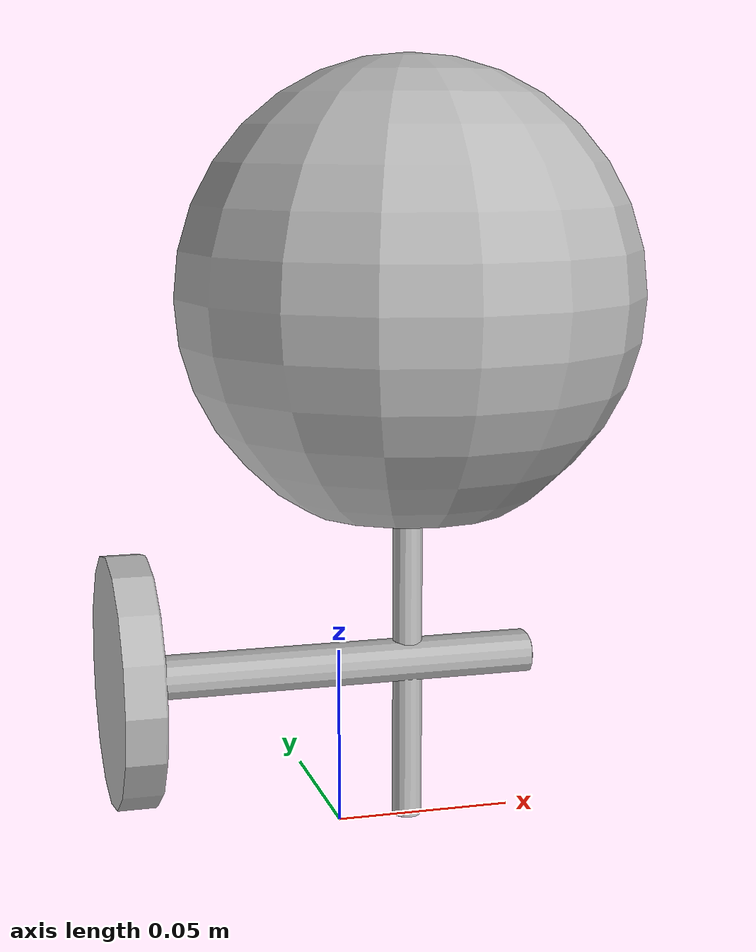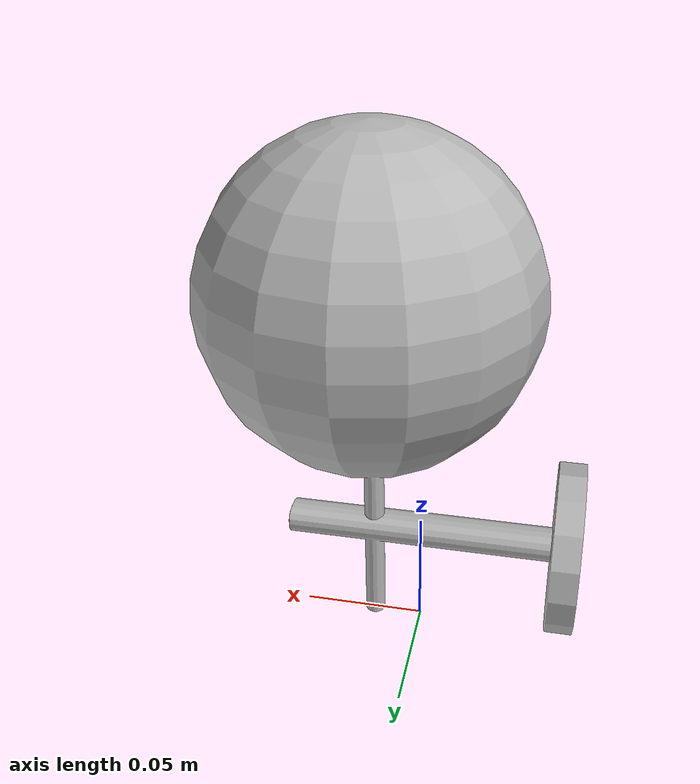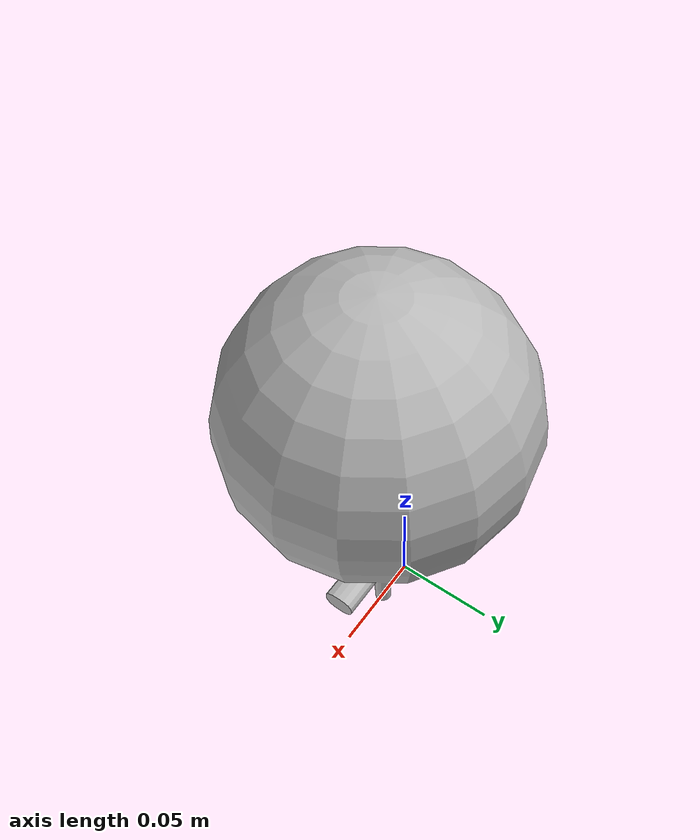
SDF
<?xml version='1.0'?>
<sdf version='1.4'>
  <model name='127'>
    <pose>0 0 0 0 0 0</pose>
    <static>true</static>
    <link name='link'>
      <collision name='collision'>
        <pose>0 0 0 0 0 0</pose>
        <geometry>
          <box>
            <size>0.149778 0.13 2</size>
          </box>
        </geometry>
      </collision>
      <visual name='visual'>
        <pose>0 0 0 0 0 0</pose>
        <geometry>
          <mesh><uri>model://127/127.dae</uri></mesh>
        </geometry>
      </visual>
    </link>
  </model>
</sdf>
